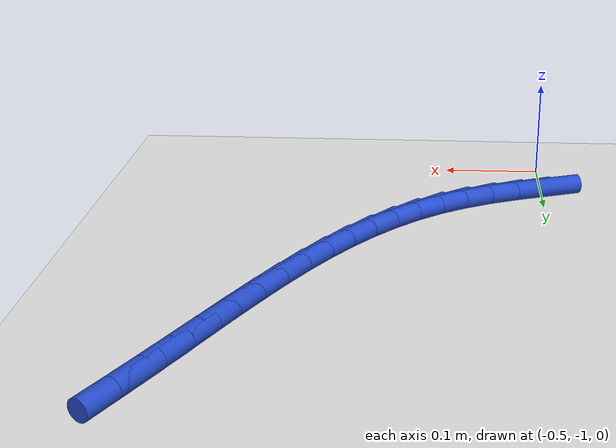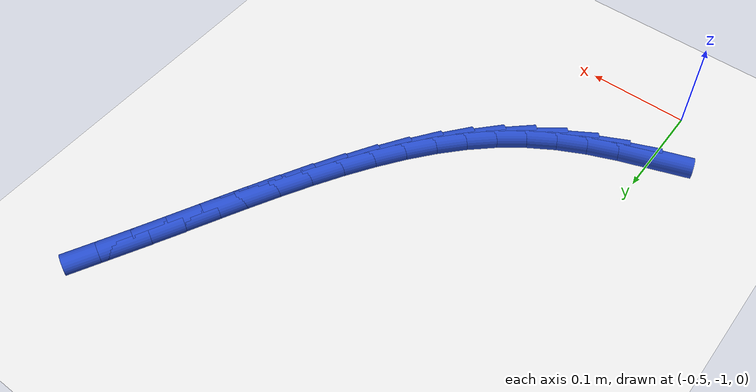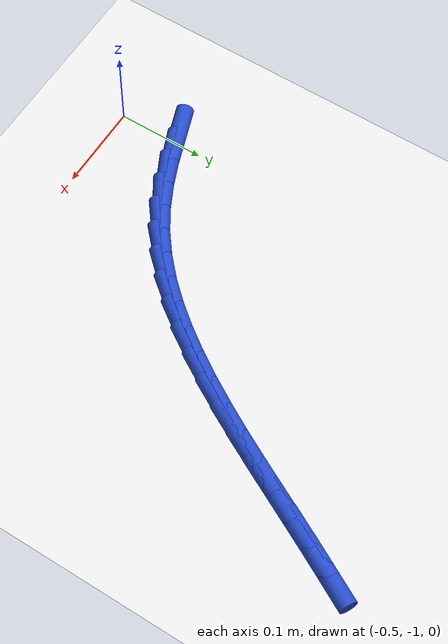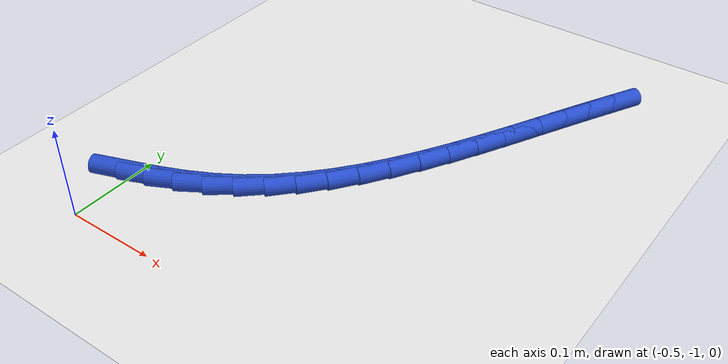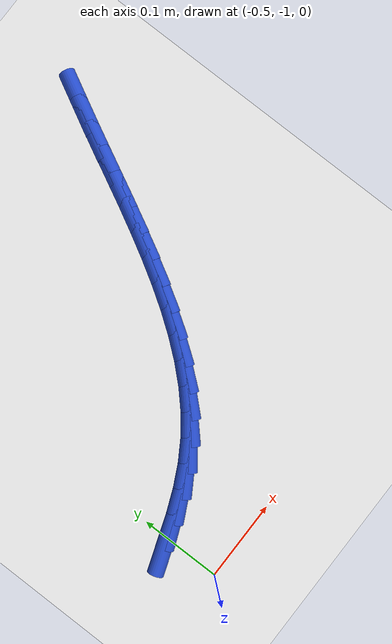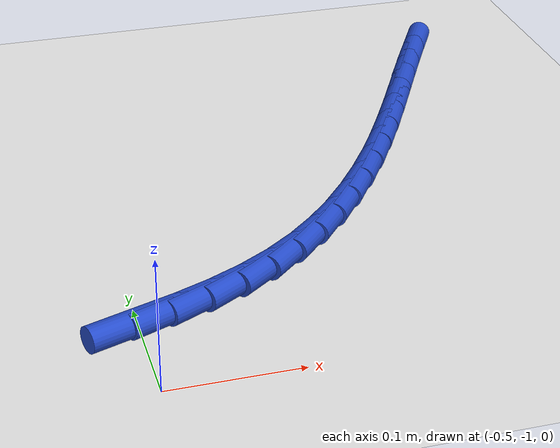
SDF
<sdf version="1.6">
 <world name="default">
  <model name="ground_plane">
   <static>1</static>
   <link name="link">
    <collision name="collision">
     <geometry><plane><normal>0 0 1</normal><size>100 100</size></plane></geometry>
     <surface><friction><ode><mu>100</mu><mu2>50</mu2></ode></friction></surface>
    </collision>
    <visual name="visual">
     <cast_shadows>0</cast_shadows>
     <geometry><plane><normal>0 0 1</normal><size>100 100</size></plane></geometry>
     <material>
      <script><uri>file://media/materials/scripts/gazebo.material</uri><name>Gazebo/WhiteGlow</name></script>
     </material>
    </visual>
   </link>
  </model>
  <model name="line">
   <link name="link_175">
    <pose>-0.5008194175950266 -0.9295603546078105 0.01 0 1.57 0.34067032724268703</pose>
    <collision name="collision">
     <geometry><cylinder><radius>0.01</radius><length>0.08</length></cylinder></geometry>
    </collision>
    <visual name="visual">
     <material>
      <script><name>Gazebo/Blue</name><uri>file://media/materials/scripts/gazebo.material</uri></script>
     </material>
     <geometry><cylinder><radius>0.01</radius><length>0.08</length></cylinder></geometry>
    </visual>
   </link>
   <link name="link_176">
    <pose>-0.4715178182445799 -0.9191731936703649 0.01 0 1.57 0.3948655442842501</pose>
    <collision name="collision">
     <geometry><cylinder><radius>0.01</radius><length>0.08</length></cylinder></geometry>
    </collision>
    <visual name="visual">
     <material>
      <script><name>Gazebo/Blue</name><uri>file://media/materials/scripts/gazebo.material</uri></script>
     </material>
     <geometry><cylinder><radius>0.01</radius><length>0.08</length></cylinder></geometry>
    </visual>
   </link>
   <link name="link_177">
    <pose>-0.44328769296034914 -0.9074081756171781 0.01 0 1.57 0.46661460973308344</pose>
    <collision name="collision">
     <geometry><cylinder><radius>0.01</radius><length>0.08</length></cylinder></geometry>
    </collision>
    <visual name="visual">
     <material>
      <script><name>Gazebo/Blue</name><uri>file://media/materials/scripts/gazebo.material</uri></script>
     </material>
     <geometry><cylinder><radius>0.01</radius><length>0.08</length></cylinder></geometry>
    </visual>
   </link>
   <link name="link_178">
    <pose>-0.4163689661387896 -0.893848828734754 0.01 0 1.57 0.5561537220510994</pose>
    <collision name="collision">
     <geometry><cylinder><radius>0.01</radius><length>0.08</length></cylinder></geometry>
    </collision>
    <visual name="visual">
     <material>
      <script><name>Gazebo/Blue</name><uri>file://media/materials/scripts/gazebo.material</uri></script>
     </material>
     <geometry><cylinder><radius>0.01</radius><length>0.08</length></cylinder></geometry>
    </visual>
   </link>
   <link name="link_179">
    <pose>-0.39100084163329324 -0.8780798939563923 0.01 0 1.57 0.6549034893722808</pose>
    <collision name="collision">
     <geometry><cylinder><radius>0.01</radius><length>0.08</length></cylinder></geometry>
    </collision>
    <visual name="visual">
     <material>
      <script><name>Gazebo/Blue</name><uri>file://media/materials/scripts/gazebo.material</uri></script>
     </material>
     <geometry><cylinder><radius>0.01</radius><length>0.08</length></cylinder></geometry>
    </visual>
   </link>
   <link name="link_180">
    <pose>-0.367305700608552 -0.8598827203938914 0.01 0 1.57 0.7451926935757129</pose>
    <collision name="collision">
     <geometry><cylinder><radius>0.01</radius><length>0.08</length></cylinder></geometry>
    </collision>
    <visual name="visual">
     <material>
      <script><name>Gazebo/Blue</name><uri>file://media/materials/scripts/gazebo.material</uri></script>
     </material>
     <geometry><cylinder><radius>0.01</radius><length>0.08</length></cylinder></geometry>
    </visual>
   </link>
   <link name="link_181">
    <pose>-0.34516103756718003 -0.8394507921741322 0.01 0 1.57 0.8241523966260758</pose>
    <collision name="collision">
     <geometry><cylinder><radius>0.01</radius><length>0.08</length></cylinder></geometry>
    </collision>
    <visual name="visual">
     <material>
      <script><name>Gazebo/Blue</name><uri>file://media/materials/scripts/gazebo.material</uri></script>
     </material>
     <geometry><cylinder><radius>0.01</radius><length>0.08</length></cylinder></geometry>
    </visual>
   </link>
   <link name="link_182">
    <pose>-0.3244135247748178 -0.8170294660861991 0.01 0 1.57 0.8917455347837326</pose>
    <collision name="collision">
     <geometry><cylinder><radius>0.01</radius><length>0.08</length></cylinder></geometry>
    </collision>
    <visual name="visual">
     <material>
      <script><name>Gazebo/Blue</name><uri>file://media/materials/scripts/gazebo.material</uri></script>
     </material>
     <geometry><cylinder><radius>0.01</radius><length>0.08</length></cylinder></geometry>
    </visual>
   </link>
   <link name="link_183">
    <pose>-0.30490983449710557 -0.7928640989191759 0.01 0 1.57 0.9484412826136458</pose>
    <collision name="collision">
     <geometry><cylinder><radius>0.01</radius><length>0.08</length></cylinder></geometry>
    </collision>
    <visual name="visual">
     <material>
      <script><name>Gazebo/Blue</name><uri>file://media/materials/scripts/gazebo.material</uri></script>
     </material>
     <geometry><cylinder><radius>0.01</radius><length>0.08</length></cylinder></geometry>
    </visual>
   </link>
   <link name="link_184">
    <pose>-0.28649663899968464 -0.7672000474621481 0.01 0 1.57 0.99495061417283</pose>
    <collision name="collision">
     <geometry><cylinder><radius>0.01</radius><length>0.08</length></cylinder></geometry>
    </collision>
    <visual name="visual">
     <material>
      <script><name>Gazebo/Blue</name><uri>file://media/materials/scripts/gazebo.material</uri></script>
     </material>
     <geometry><cylinder><radius>0.01</radius><length>0.08</length></cylinder></geometry>
    </visual>
   </link>
   <link name="link_185">
    <pose>-0.26902061054819526 -0.7402826685041998 0.01 0 1.57 1.032037857164172</pose>
    <collision name="collision">
     <geometry><cylinder><radius>0.01</radius><length>0.08</length></cylinder></geometry>
    </collision>
    <visual name="visual">
     <material>
      <script><name>Gazebo/Blue</name><uri>file://media/materials/scripts/gazebo.material</uri></script>
     </material>
     <geometry><cylinder><radius>0.01</radius><length>0.08</length></cylinder></geometry>
    </visual>
   </link>
   <link name="link_186">
    <pose>-0.25232842140827777 -0.7123573188344149 0.01 0 1.57 1.0604030635609896</pose>
    <collision name="collision">
     <geometry><cylinder><radius>0.01</radius><length>0.08</length></cylinder></geometry>
    </collision>
    <visual name="visual">
     <material>
      <script><name>Gazebo/Blue</name><uri>file://media/materials/scripts/gazebo.material</uri></script>
     </material>
     <geometry><cylinder><radius>0.01</radius><length>0.08</length></cylinder></geometry>
    </visual>
   </link>
   <link name="link_187">
    <pose>-0.23626674384557278 -0.6836693552418778 0.01 0 1.57 1.0806157414832853</pose>
    <collision name="collision">
     <geometry><cylinder><radius>0.01</radius><length>0.08</length></cylinder></geometry>
    </collision>
    <visual name="visual">
     <material>
      <script><name>Gazebo/Blue</name><uri>file://media/materials/scripts/gazebo.material</uri></script>
     </material>
     <geometry><cylinder><radius>0.01</radius><length>0.08</length></cylinder></geometry>
    </visual>
   </link>
   <link name="link_188">
    <pose>-0.22068225012572093 -0.6544641345156731 0.01 0 1.57 1.0930803090312928</pose>
    <collision name="collision">
     <geometry><cylinder><radius>0.01</radius><length>0.08</length></cylinder></geometry>
    </collision>
    <visual name="visual">
     <material>
      <script><name>Gazebo/Blue</name><uri>file://media/materials/scripts/gazebo.material</uri></script>
     </material>
     <geometry><cylinder><radius>0.01</radius><length>0.08</length></cylinder></geometry>
    </visual>
   </link>
   <link name="link_189">
    <pose>-0.20542161251436228 -0.6249870134448844 0.01 0 1.57 1.0980183745331817</pose>
    <collision name="collision">
     <geometry><cylinder><radius>0.01</radius><length>0.08</length></cylinder></geometry>
    </collision>
    <visual name="visual">
     <material>
      <script><name>Gazebo/Blue</name><uri>file://media/materials/scripts/gazebo.material</uri></script>
     </material>
     <geometry><cylinder><radius>0.01</radius><length>0.08</length></cylinder></geometry>
    </visual>
   </link>
   <link name="link_190">
    <pose>-0.1903315032771382 -0.5954833488185973 0.01 0 1.57 1.0954581141764277</pose>
    <collision name="collision">
     <geometry><cylinder><radius>0.01</radius><length>0.08</length></cylinder></geometry>
    </collision>
    <visual name="visual">
     <material>
      <script><name>Gazebo/Blue</name><uri>file://media/materials/scripts/gazebo.material</uri></script>
     </material>
     <geometry><cylinder><radius>0.01</radius><length>0.08</length></cylinder></geometry>
    </visual>
   </link>
   <link name="link_191">
    <pose>-0.1752585946796887 -0.5661984974258955 0.01 0 1.57 1.0868366507856102</pose>
    <collision name="collision">
     <geometry><cylinder><radius>0.01</radius><length>0.08</length></cylinder></geometry>
    </collision>
    <visual name="visual">
     <material>
      <script><name>Gazebo/Blue</name><uri>file://media/materials/scripts/gazebo.material</uri></script>
     </material>
     <geometry><cylinder><radius>0.01</radius><length>0.08</length></cylinder></geometry>
    </visual>
   </link>
   <link name="link_192">
    <pose>-0.16008593150082773 -0.5373341519387392 0.01 0 1.57 1.0806975737168363</pose>
    <collision name="collision">
     <geometry><cylinder><radius>0.01</radius><length>0.08</length></cylinder></geometry>
    </collision>
    <visual name="visual">
     <material>
      <script><name>Gazebo/Blue</name><uri>file://media/materials/scripts/gazebo.material</uri></script>
     </material>
     <geometry><cylinder><radius>0.01</radius><length>0.08</length></cylinder></geometry>
    </visual>
   </link>
  </model>
 </world>
</sdf>
